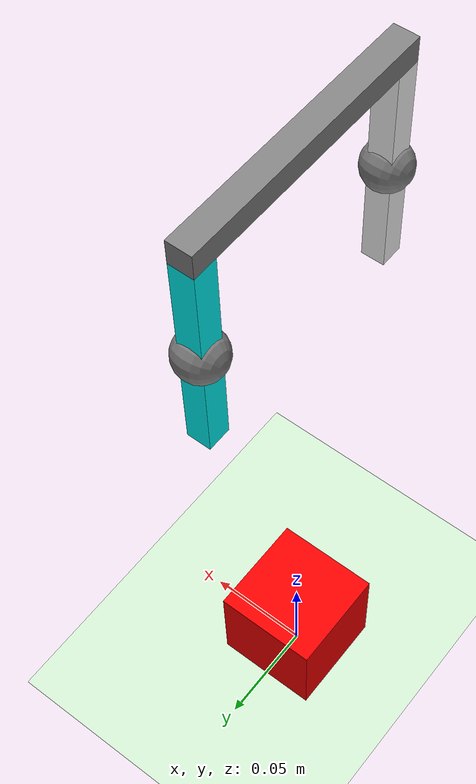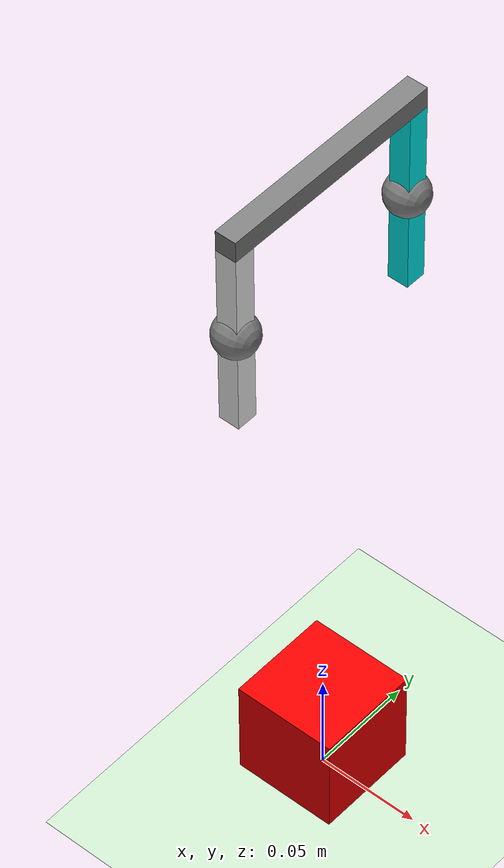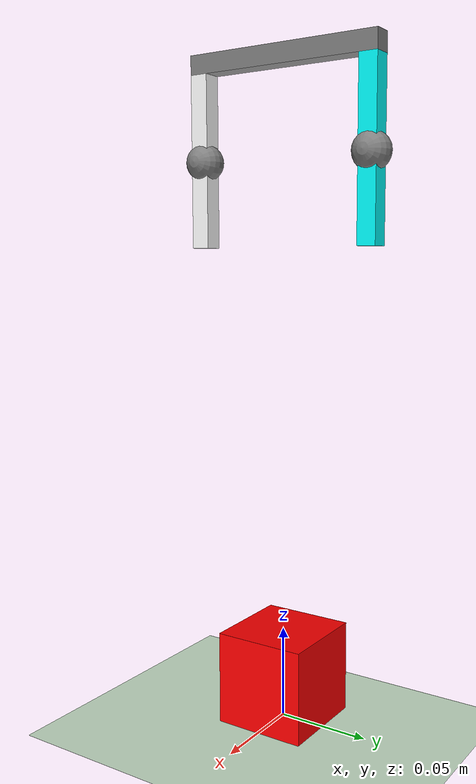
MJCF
<mujoco model="gripper">
    <compiler angle="radian" coordinate="local" inertiafromgeom="true" meshdir="mesh" texturedir="textures" />
    <!--option gravity="0 0 -9.81" integrator="Euler" iterations="20" timestep="0.01" /-->

    <default>
        <joint armature="0.04" damping="1" limited="true" />
        <geom conaffinity="0" condim="1" contype="0" density="10" friction=".8 .1 .1" margin="0.002" />
    </default>

    <asset>

        <texture name="texgeom" type="cube" builtin="flat" mark="cross" width="127" height="1278" rgb1="0.8 0.6 0.4" rgb2="0.8 0.6 0.4" markrgb="1 1 1" random="0.01" />
        <material name='MatPlane' texture="texgeom" shininess="1" texrepeat="60 60" specular="1"  reflectance="0.5" />
    </asset>
    <worldbody>
        <light diffuse=".5 .5 .5" dir="0 0 -1" pos="0 0 3" />

        <geom conaffinity="1" contype="1" name="table" pos="0 0 0" size="10 10 0.1" type="plane" rgba='0.8 0.9 0.8 1' />

<!--  ================= BEGIN GRIPPER ================= /-->

        <body name="claw" pos="0 0 0.3" quat="1 0 1 0">

            <geom name="rail" type="box" pos="-0.05 0 0" size="0.005 0.055 0.005" friction="0.001 0.005 0.0001" rgba="0.5 0.5 0.5 1.0"/>

            <joint name="vertical" type="slide" pos="0 0 0" axis="0 1 0" range= "-0.25 0.25"  user="008" stiffness="10" limited="true"/>

            <body name="rightclaw" pos="0 -0.05 0" >
                <geom name="rightclaw_it"  type="box" pos="0 0 0" size="0.045 0.005 0.005" friction="0.001 0.005 0.0001" rgba="1.0 1.0 1.0 1.0" contype="1" conaffinity="1"/>
                <site name="rightEndeffector" pos="0 0 0" size="0.01" />

                <joint name="r_close" type="slide" pos="0 0 0" axis="0 1 0" range= "0 0.04"  user="008" stiffness="10" limited="true"/>
            </body>

            <body name="leftclaw" pos="0 0.05 0">
                <geom name="leftclaw_it"  type="box" pos="0 0 0" size="0.045 0.005 0.005" friction="0.001 0.005 0.0001" rgba="0.0 1.0 1.0 1.0" contype="1" conaffinity="1"/>
                <site name="leftEndeffector" pos="0 0 0" size="0.01" />

                <joint name="l_close" type="slide" pos="0 0 0" axis="0 1 0" range= "-0.04 0"  user="008" stiffness="10" limited="true"/>

            </body>
        </body>

<!--  ================= END GRIPPER ================= /-->

        <body name="obj1" pos="0 0. 0.025">
            <joint axis="1 0 0" damping="0" name="obj1_slidex" pos="0 0 0"  type="free" limited="false" />

            <geom conaffinity="1" contype="1" pos="0 0 0" density="0.05" size="0.025 0.025 0.025" rgba="1 0. 0 1" type="box" />
        </body>

    </worldbody>

    <actuator>

        <motor gear="1" joint="vertical" ctrllimited="true" ctrlrange="-1.0 1.0"/>
        <motor gear="1" joint="r_close" ctrllimited="true" ctrlrange="-1.0 1.0"/>
        <motor gear="1" joint="l_close" ctrllimited="true" ctrlrange="-1.0 1.0"/>

    </actuator>

</mujoco>
